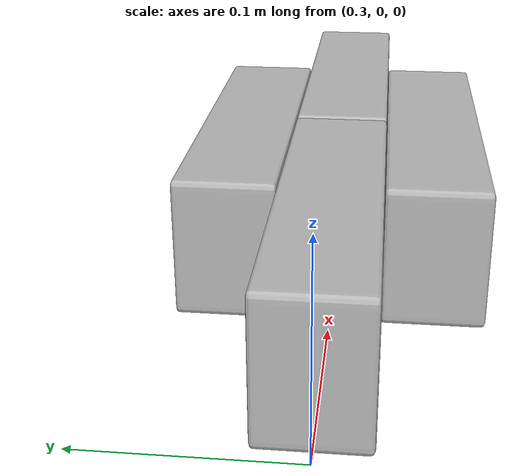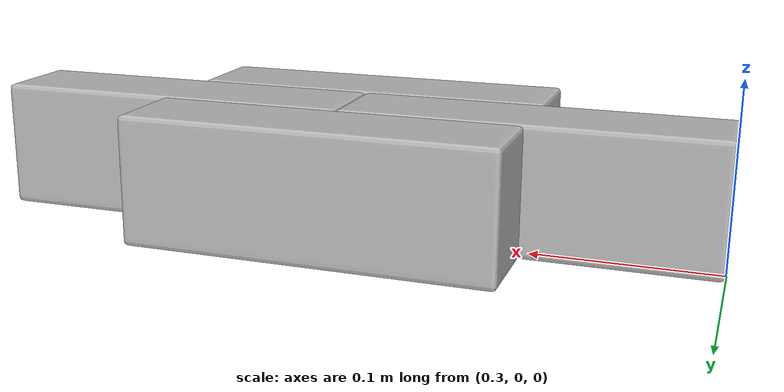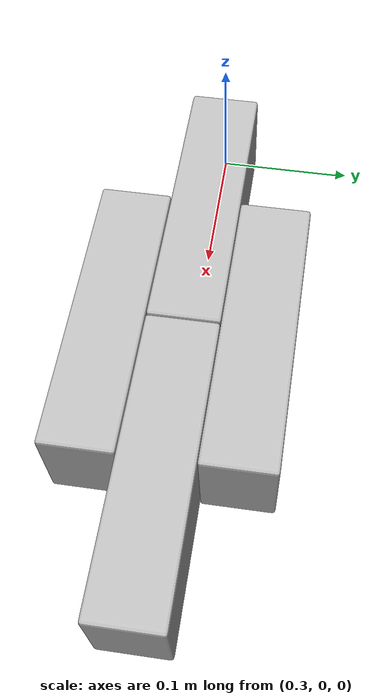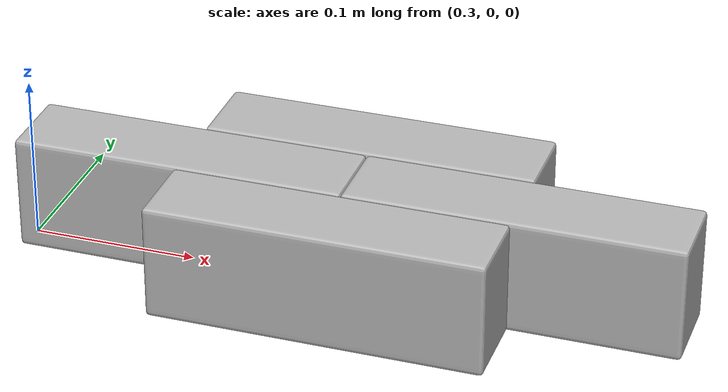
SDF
<sdf version="1.6">
 <world name="empty">
  <physics name="1ms" type="ignored">
   <max_step_size>0.001</max_step_size>
   <real_time_factor>1.0</real_time_factor>
  </physics>
  <plugin filename="ignition-gazebo-physics-system" name="gz::sim::systems::Physics"/>
  <plugin filename="ignition-gazebo-user-commands-system" name="gz::sim::systems::UserCommands"/>
  <plugin filename="ignition-gazebo-scene-broadcaster-system" name="gz::sim::systems::SceneBroadcaster"/>
  <plugin filename="ignition-gazebo-contact-system" name="gz::sim::systems::Contact"/>
  <plugin filename="ignition-gazebo-sensors-system" name="gz::sim::systems::Sensors"/>
  <model name="brick0"><pose>0.4 0 .04 0 0 0</pose><include><uri>model://brick</uri></include></model>
  <model name="brick1"><pose>0.6 0 .04 0 0 0</pose><include><uri>model://brick</uri></include></model>
  <model name="brick2"><pose>0.5 -0.05 .04 0 0 0</pose><include><uri>model://brick</uri></include></model>
  <model name="brick3"><pose>0.5 0.05 .04 0 0 0</pose><include><uri>model://brick</uri></include></model>
  <light type="directional" name="sun">
   <pose>0 0 10 0 0 0</pose>
   <diffuse>0.8 0.8 0.8 1</diffuse>
   <specular>0.2 0.2 0.2 1</specular>
   <attenuation>
    <range>1000</range>
    <constant>0.9</constant>
    <linear>0.01</linear>
    <quadratic>0.001</quadratic>
   </attenuation>
   <direction>-0.5 0.1 -0.9</direction>
  </light>
  <model name="ground_plane">
   <pose>0 0 -0.74 0 0 0</pose>
   <static>true</static>
   <link name="link">
    <collision name="collision">
     <geometry><plane><normal>0 0 1</normal><size>100 100</size></plane></geometry>
    </collision>
    <visual name="visual">
     <geometry><plane><normal>0 0 1</normal><size>100 100</size></plane></geometry>
     <material>
      <ambient>0.8 0.8 0.8 1</ambient>
      <diffuse>0.8 0.8 0.8 1</diffuse>
      <specular>0.8 0.8 0.8 1</specular>
     </material>
    </visual>
   </link>
  </model>
 </world>
</sdf>

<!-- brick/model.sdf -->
<!--
SPDX-FileCopyrightText: Alliander N. V.

SPDX-License-Identifier: Apache-2.0
-->
<sdf version="1.6">
    <model name="brick">
        <pose>0 0 0 1.57079632679 0 0</pose>
        <self_collide>false</self_collide>

        <link name='brick'>
            <collision name="collision">
                <geometry>
                    <mesh>
                        <uri>resources/baksteen_collision.obj</uri>
                    </mesh>
                </geometry>
            </collision>
            <visual name='visual'>
                <geometry>
                    <mesh>
                        <uri>resources/baksteen.obj</uri>
                    </mesh>
                </geometry>
            </visual>
            <inertial>
                <mass>2.5</mass>
                <density>1920</density>
            </inertial>
        </link>
        <static>0</static>
    </model>
</sdf>
